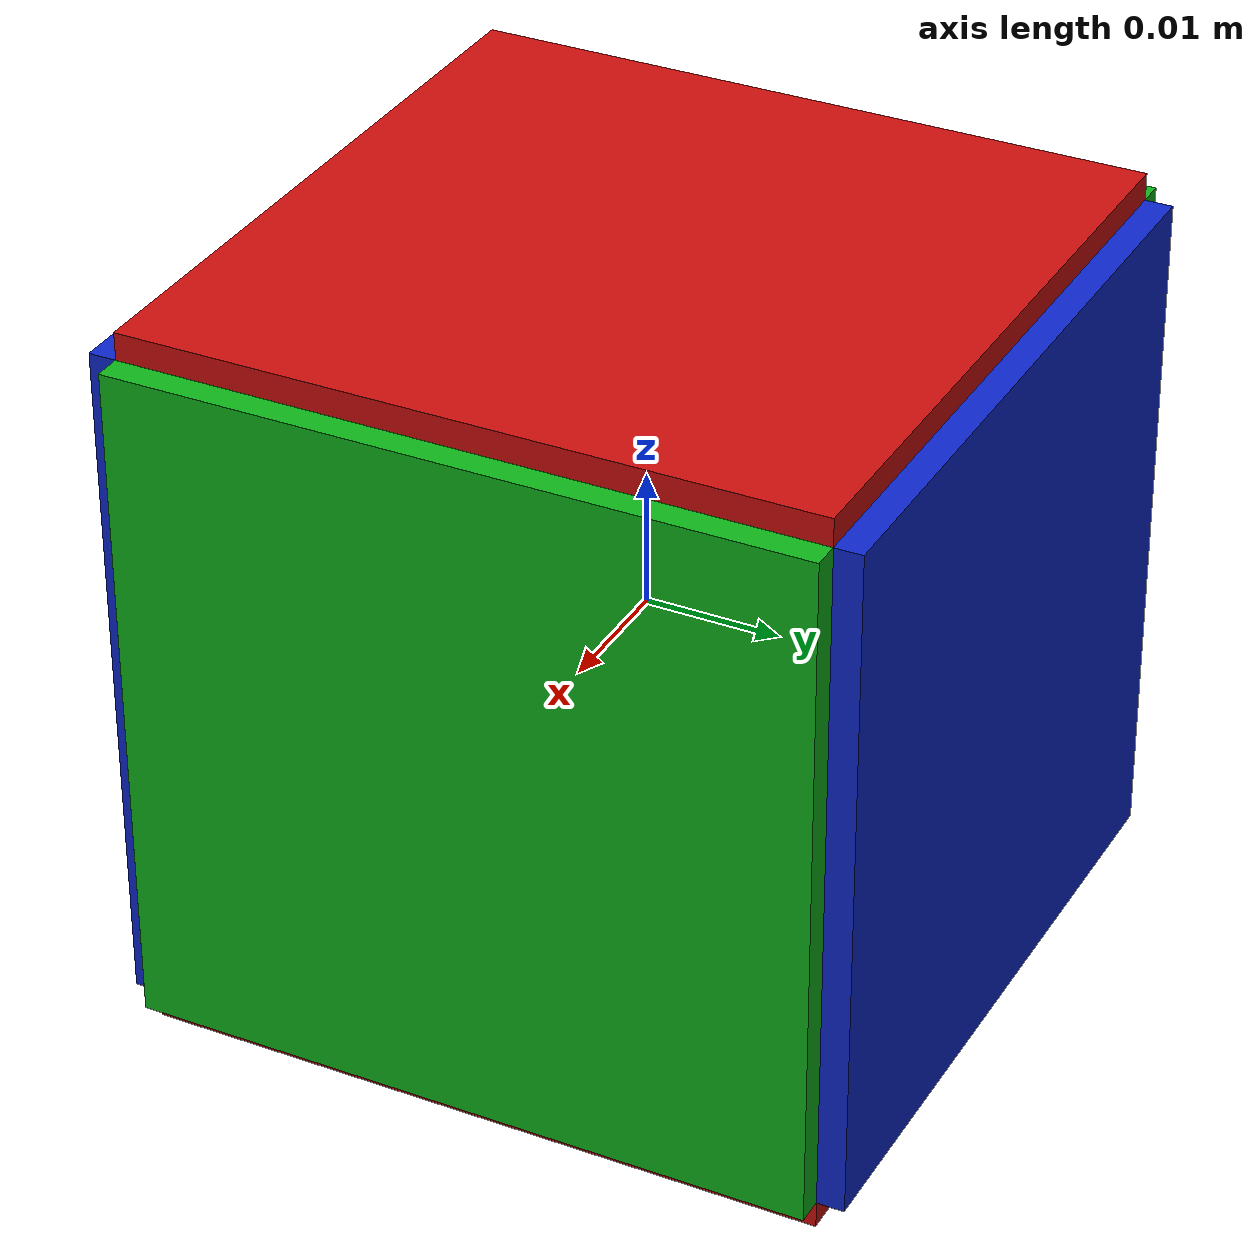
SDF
<?xml version="1.0"?>
<sdf version="1.9">
  <model name="target_cube">
    <link name="link">
      <inertial>
        <mass>0.05</mass>
        <inertia>
          <ixx>0.0000208</ixx>
          <iyy>0.0000208</iyy>
          <izz>0.0000208</izz>
          <ixy>0</ixy>
          <ixz>0</ixz>
          <iyz>0</iyz>
        </inertia>
      </inertial>

      <collision name="collision">
        <geometry>
          <box><size>0.05 0.05 0.05</size></box>
        </geometry>
        <surface>
          <friction>
            <ode>
              <mu>1.0</mu>
              <mu2>1.0</mu2>
            </ode>
          </friction>
        </surface>
      </collision>

      <!-- +Z top: red -->
      <visual name="face_top">
        <pose>0 0 0.026 0 0 0</pose>
        <geometry><box><size>0.05 0.05 0.002</size></box></geometry>
        <material>
          <ambient>0.8 0.05 0.05 1</ambient>
          <diffuse>0.8 0.05 0.05 1</diffuse>
        </material>
      </visual>
      <!-- -Z bottom: red -->
      <visual name="face_bottom">
        <pose>0 0 -0.026 0 0 0</pose>
        <geometry><box><size>0.05 0.05 0.002</size></box></geometry>
        <material>
          <ambient>0.8 0.05 0.05 1</ambient>
          <diffuse>0.8 0.05 0.05 1</diffuse>
        </material>
      </visual>

      <!-- +X front: green -->
      <visual name="face_front">
        <pose>0.026 0 0 0 0 0</pose>
        <geometry><box><size>0.002 0.05 0.05</size></box></geometry>
        <material>
          <ambient>0.05 0.7 0.1 1</ambient>
          <diffuse>0.05 0.7 0.1 1</diffuse>
        </material>
      </visual>
      <!-- -X back: green -->
      <visual name="face_back">
        <pose>-0.026 0 0 0 0 0</pose>
        <geometry><box><size>0.002 0.05 0.05</size></box></geometry>
        <material>
          <ambient>0.05 0.7 0.1 1</ambient>
          <diffuse>0.05 0.7 0.1 1</diffuse>
        </material>
      </visual>

      <!-- +Y left: blue -->
      <visual name="face_left">
        <pose>0 0.026 0 0 0 0</pose>
        <geometry><box><size>0.05 0.002 0.05</size></box></geometry>
        <material>
          <ambient>0.05 0.15 0.8 1</ambient>
          <diffuse>0.05 0.15 0.8 1</diffuse>
        </material>
      </visual>
      <!-- -Y right: blue -->
      <visual name="face_right">
        <pose>0 -0.026 0 0 0 0</pose>
        <geometry><box><size>0.05 0.002 0.05</size></box></geometry>
        <material>
          <ambient>0.05 0.15 0.8 1</ambient>
          <diffuse>0.05 0.15 0.8 1</diffuse>
        </material>
      </visual>
    </link>
  </model>
</sdf>
